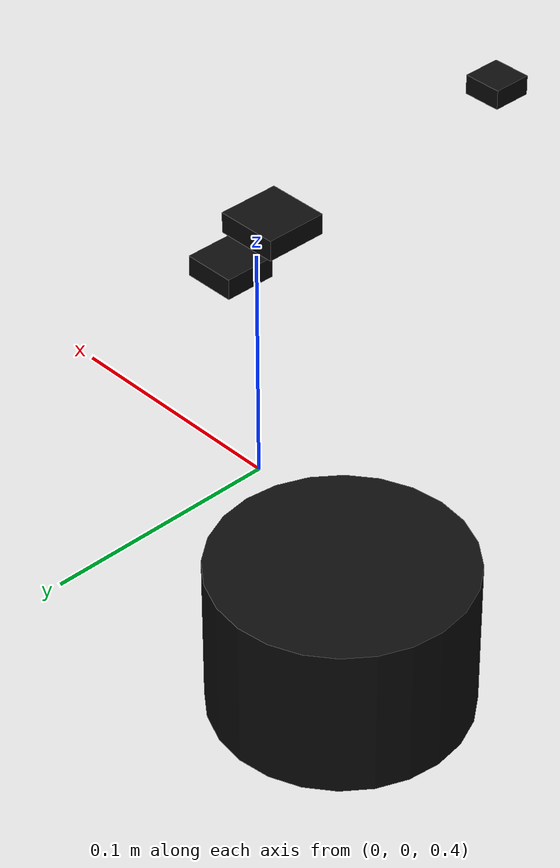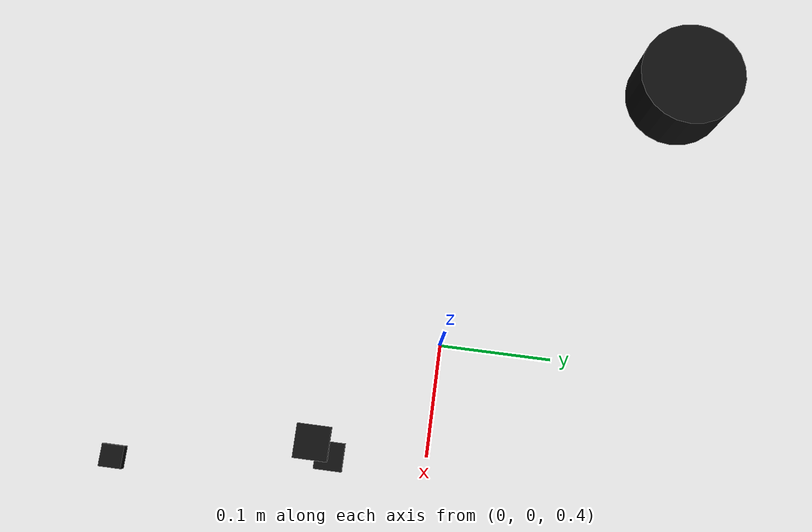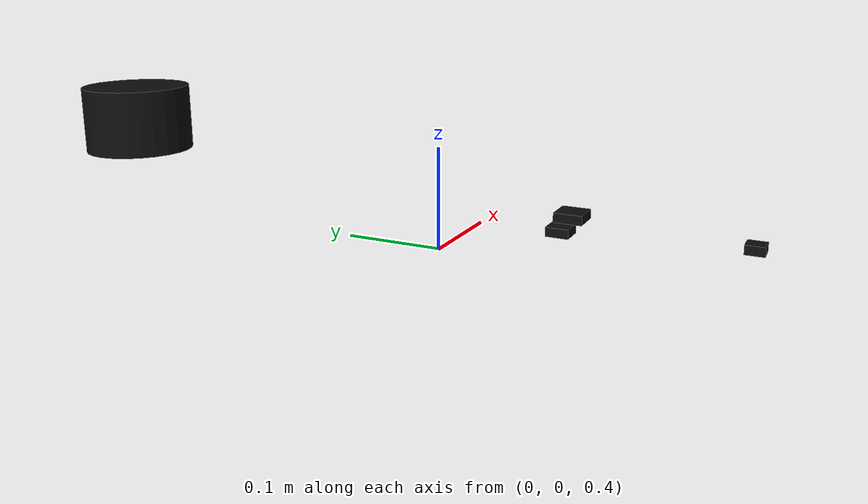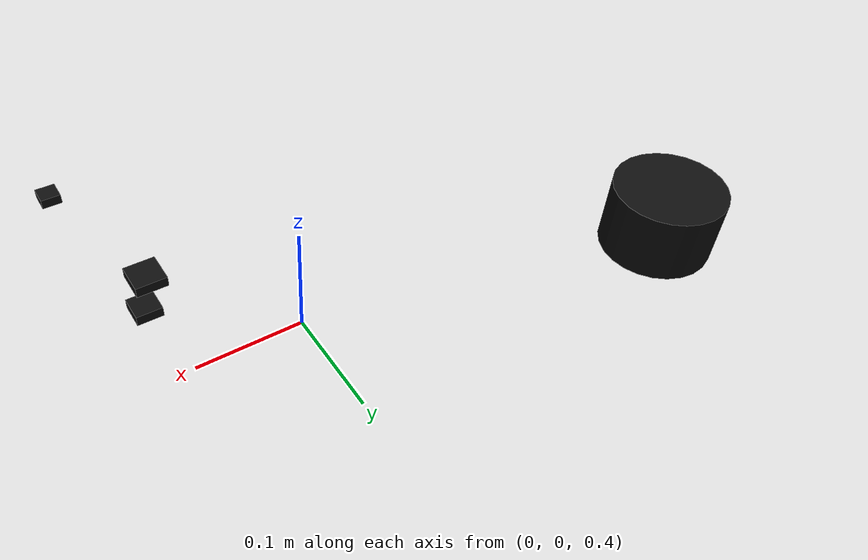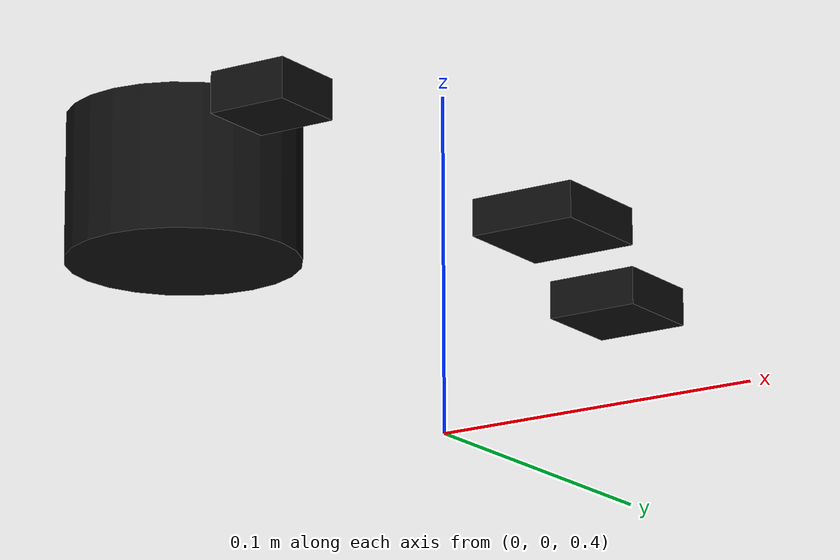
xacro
<?xml version="1.0"?>
<robot name="tracked_robot" xmlns:xacro="http://www.ros.org/wiki/xacro">

  <!-- Материал для визуализации датчиков -->
  <material name="black">
    <color rgba="0.05 0.05 0.05 1.0"/>
  </material>

  <!-- ============ корень TF ============ -->
  <link name="base_link"/>

  <!-- ============ координаты датчиков (ПРАВЬТЕ ЗДЕСЬ) ============ -->
  <xacro:property name="imu_xyz"  value="0.135 -0.275 0.4" />
  <xacro:property name="mag_xyz"  value="0.11  -0.085 0.4" />   <!-- магнитометр -->
  <xacro:property name="gps_xyz"  value="0.10  -0.100 0.42" /> <!-- GPS-антенна -->
  <xacro:property name="laser_xyz" value="-0.21  0.16  0.55" />

  <!-- ============ MPU6050 ============ -->
  <link name="imu_link">
    <visual>
      <geometry><box size="0.02 0.02 0.01"/></geometry>
      <material name="black"/>
    </visual>
  </link>
  <joint name="base_to_imu" type="fixed">
    <parent link="base_link"/>
    <child  link="imu_link"/>
    <origin xyz="${imu_xyz}" rpy="0 0 0"/>
  </joint>

  <!-- ============ Магнитометр (отдельный модуль) ============ -->
  <link name="mag_link">
    <visual>
      <geometry><box size="0.025 0.025 0.01"/></geometry>
      <material name="black"/>
    </visual>
  </link>
  <joint name="base_to_mag" type="fixed">
    <parent link="base_link"/>
    <child  link="mag_link"/>
    <origin xyz="${mag_xyz}" rpy="0 0 0"/>
  </joint>

  <!-- ============ GPS-антенна (отдельный модуль) ============ -->
  <link name="gps_link">
    <visual>
      <geometry><box size="0.03 0.03 0.01"/></geometry>
      <material name="black"/>
    </visual>
  </link>
  <joint name="base_to_gps" type="fixed">
    <parent link="base_link"/>
    <child  link="gps_link"/>
    <origin xyz="${gps_xyz}" rpy="0 0 0"/>
  </joint>

  <!-- ============ Лидар ============ -->
  <link name="laser_frame">
    <visual>
      <geometry><cylinder radius="0.04" length="0.05"/></geometry>
      <material name="black"/>
    </visual>
  </link>
  <joint name="base_to_laser" type="fixed">
    <parent link="base_link"/>
    <child  link="laser_frame"/>
    <origin xyz="${laser_xyz}" rpy="0 0 0"/>
  </joint>

</robot>
